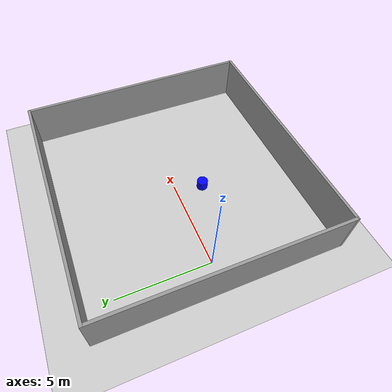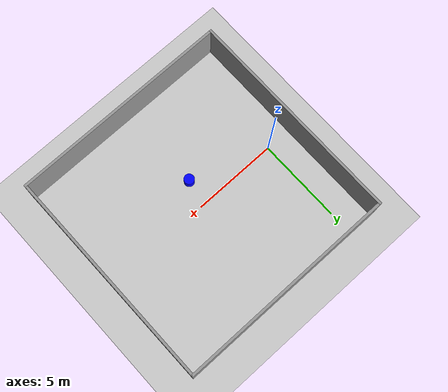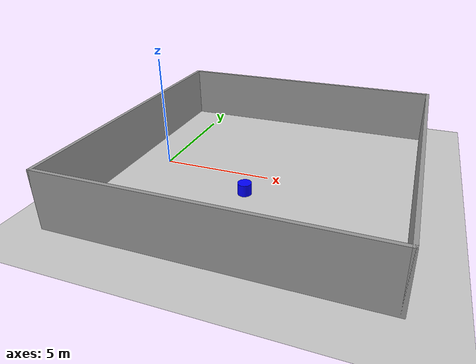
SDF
<sdf version="1.7">
 <world name="default">
  <light name="sun" type="directional">
   <pose>0 0 10 0 -0 0</pose>
   <diffuse>0.8 0.8 0.8 1</diffuse>
   <specular>0.2 0.2 0.2 1</specular>
   <attenuation>
    <range>1000</range>
    <constant>0.9</constant>
    <linear>0.01</linear>
    <quadratic>0.001</quadratic>
   </attenuation>
   <direction>-0.5 0.1 -0.9</direction>
   <spot><inner_angle>0</inner_angle><outer_angle>0</outer_angle><falloff>0</falloff></spot>
  </light>
  <model name="cylinder">
   <static>true</static>
   <pose>4.5 -1.5 0 0 0 0</pose>
   <link name="cylinder_link">
    <visual name="cylinder_visual">
     <geometry><cylinder><radius>0.3</radius><length>1.0</length></cylinder></geometry>
     <material><ambient>0 0 1 1</ambient><diffuse>0 0 1 1</diffuse></material>
    </visual>
   </link>
  </model>
  <include><uri>model://walls</uri><name>walls</name><pose>4.9 0 0.1 0 0 0</pose></include>
  <model name="ground_plane">
   <static>1</static>
   <link name="link">
    <collision name="collision">
     <geometry><plane><normal>0 0 1</normal><size>100 100</size></plane></geometry>
     <surface><friction><ode><mu>100</mu><mu2>50</mu2></ode></friction></surface>
    </collision>
    <visual name="visual">
     <cast_shadows>0</cast_shadows>
     <geometry><plane><normal>0 0 1</normal><size>100 100</size></plane></geometry>
     <material>
      <script><uri>file://media/materials/scripts/gazebo.material</uri><name>Gazebo/Grey</name></script>
     </material>
    </visual>
   </link>
  </model>
  <gravity>0 0 -9.8</gravity>
  <magnetic_field>6e-06 2.3e-05 -4.2e-05</magnetic_field>
  <atmosphere type="adiabatic"/>
  <physics type="ode">
   <max_step_size>0.001</max_step_size>
   <real_time_factor>1</real_time_factor>
   <real_time_update_rate>1000</real_time_update_rate>
  </physics>
  <scene><ambient>0.4 0.4 0.4 1</ambient><background>0.7 0.7 0.7 1</background><shadows>1</shadows></scene>
  <spherical_coordinates>
   <surface_model>EARTH_WGS84</surface_model>
   <latitude_deg>0</latitude_deg>
   <longitude_deg>0</longitude_deg>
   <elevation>0</elevation>
   <heading_deg>0</heading_deg>
  </spherical_coordinates>
 </world>
</sdf>

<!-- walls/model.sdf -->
<sdf version='1.7'>
  <model name='walls'>
    <pose>3.105 3.115 0 0 -0 0</pose>
    <link name='Wall_0'>
      <collision name='Wall_0_Collision'>
        <geometry>
          <box>
            <size>13 0.15 2.5</size>
          </box>
        </geometry>
        <pose>0 0 1.25 0 -0 0</pose>
      </collision>
      <visual name='Wall_0_Visual'>
        <pose>0 0 1.25 0 -0 0</pose>
        <geometry>
          <box>
            <size>13 0.15 2.5</size>
          </box>
        </geometry>
        <material>
          <script>
            <uri>file://media/materials/scripts/gazebo.material</uri>
            <name>Gazebo/Grey</name>
          </script>
          <ambient>1 1 1 1</ambient>
        </material>
        <meta>
          <layer>0</layer>
        </meta>
      </visual>
      <pose>-6.425 0 0 0 -0 1.5708</pose>
    </link>
    <link name='Wall_3'>
      <collision name='Wall_3_Collision'>
        <geometry>
          <box>
            <size>13 0.15 2.5</size>
          </box>
        </geometry>
        <pose>0 0 1.25 0 -0 0</pose>
      </collision>
      <visual name='Wall_3_Visual'>
        <pose>0 0 1.25 0 -0 0</pose>
        <geometry>
          <box>
            <size>13 0.15 2.5</size>
          </box>
        </geometry>
        <material>
          <script>
            <uri>file://media/materials/scripts/gazebo.material</uri>
            <name>Gazebo/Grey</name>
          </script>
          <ambient>1 1 1 1</ambient>
        </material>
        <meta>
          <layer>0</layer>
        </meta>
      </visual>
      <pose>0 -6.425 0 0 -0 0</pose>
    </link>
    <link name='Wall_5'>
      <collision name='Wall_5_Collision'>
        <geometry>
          <box>
            <size>13 0.15 2.5</size>
          </box>
        </geometry>
        <pose>0 0 1.25 0 -0 0</pose>
      </collision>
      <visual name='Wall_5_Visual'>
        <pose>0 0 1.25 0 -0 0</pose>
        <geometry>
          <box>
            <size>13 0.15 2.5</size>
          </box>
        </geometry>
        <material>
          <script>
            <uri>file://media/materials/scripts/gazebo.material</uri>
            <name>Gazebo/Grey</name>
          </script>
          <ambient>1 1 1 1</ambient>
        </material>
        <meta>
          <layer>0</layer>
        </meta>
      </visual>
      <pose>6.425 0 0 0 -0 1.5708</pose>
    </link>
    <link name='Wall_7'>
      <collision name='Wall_7_Collision'>
        <geometry>
          <box>
            <size>13 0.15 2.5</size>
          </box>
        </geometry>
        <pose>0 0 1.25 0 -0 0</pose>
      </collision>
      <visual name='Wall_7_Visual'>
        <pose>0 0 1.25 0 -0 0</pose>
        <geometry>
          <box>
            <size>13 0.15 2.5</size>
          </box>
        </geometry>
        <material>
          <script>
            <uri>file://media/materials/scripts/gazebo.material</uri>
            <name>Gazebo/Grey</name>
          </script>
          <ambient>1 1 1 1</ambient>
        </material>
        <meta>
          <layer>0</layer>
        </meta>
      </visual>
      <pose>0 6.425 0 0 -0 0</pose>
    </link>
    <static>1</static>
  </model>
</sdf>
